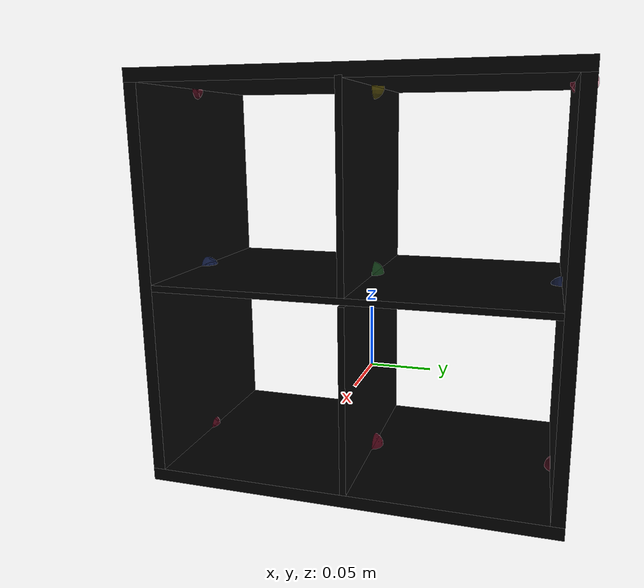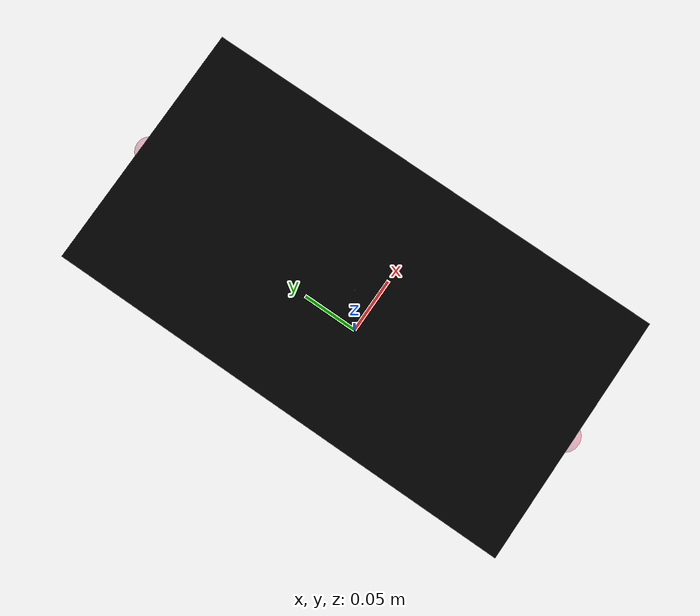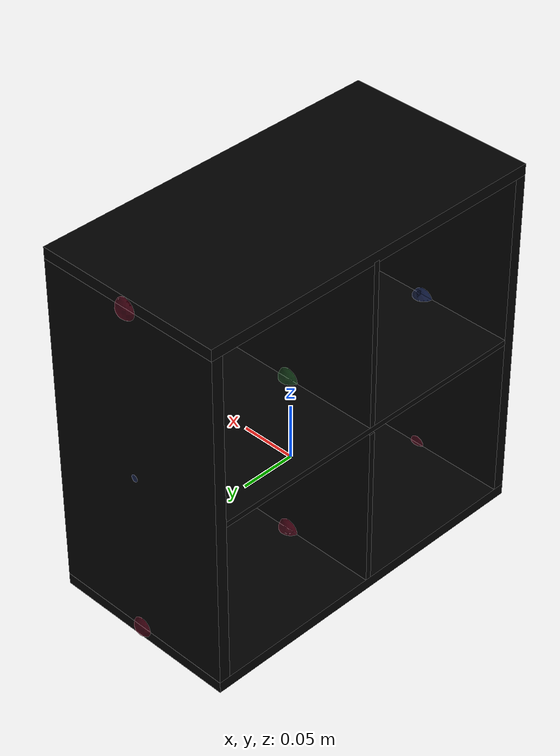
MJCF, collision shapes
<mujoco model="bookcase_expedit_0374">
    <custom>
        <numeric data="0.22421 -0.201384 0.002573 0.707107 -0.707107 0.000151 -0.000151" name="0_part0_initpos"/>
        <numeric data="0.214992 0.004814 0.00247 0.707046 0.707046 -0.00929 -0.00929" name="6_part6_initpos"/>
        <numeric data="-0.005844 -0.11863 0.00247 0.999429 -0.0 -0.0 0.033777" name="5_part5_initpos"/>
        <numeric data="0.220817 0.28772 0.00497 -0.000978 -0.000978 -0.707106 -0.707106" name="4_part4_initpos"/>
        <numeric data="-0.252329 0.285712 0.004955 0.707107 -0.707107 -7e-06 7e-06" name="3_part3_initpos"/>
        <numeric data="-0.254771 -0.120552 0.004956 -0.0 0.0 -1.0 0.0" name="2_part2_initpos"/>
        <numeric data="-0.001746 0.289743 0.00497 0.999611 0.0 -0.0 -0.027883" name="1_part1_initpos"/>
    </custom>
    <asset>
        <mesh file="bookcase_expedit_0374/0.stl" name="part0" scale="0.01 0.01 0.01"/>
        <mesh file="bookcase_expedit_0374/6.stl" name="part6" scale="0.01 0.01 0.01"/>
        <mesh file="bookcase_expedit_0374/5.stl" name="part5" scale="0.01 0.01 0.01"/>
        <mesh file="bookcase_expedit_0374/4.stl" name="part4" scale="0.01 0.01 0.01"/>
        <mesh file="bookcase_expedit_0374/3.stl" name="part3" scale="0.01 0.01 0.01"/>
        <mesh file="bookcase_expedit_0374/2.stl" name="part2" scale="0.01 0.01 0.01"/>
        <mesh file="bookcase_expedit_0374/1.stl" name="part1" scale="0.01 0.01 0.01"/>
    </asset>
    <equality>
        <weld active="false" body1="3_part3" body2="2_part2" solimp="1 1 0.5" solref="0.01 0.3"/>
        <weld active="false" body1="3_part3" body2="1_part1" solimp="1 1 0.5" solref="0.01 0.3"/>
        <weld active="false" body1="4_part4" body2="2_part2" solimp="1 1 0.5" solref="0.01 0.3"/>
        <weld active="false" body1="4_part4" body2="1_part1" solimp="1 1 0.5" solref="0.01 0.3"/>
        <weld active="false" body1="0_part0" body2="2_part2" solimp="1 1 0.5" solref="0.01 0.3"/>
        <weld active="false" body1="0_part0" body2="1_part1" solimp="1 1 0.5" solref="0.01 0.3"/>
        <weld active="false" body1="5_part5" body2="3_part3" solimp="1 1 0.5" solref="0.01 0.3"/>
        <weld active="false" body1="5_part5" body2="4_part4" solimp="1 1 0.5" solref="0.01 0.3"/>
        <weld active="false" body1="5_part5" body2="0_part0" solimp="1 1 0.5" solref="0.01 0.3"/>
        <weld active="false" body1="6_part6" body2="5_part5" solimp="1 1 0.5" solref="0.01 0.3"/>
        <weld active="false" body1="0_part0" body2="5_part5" solimp="1 1 0.5" solref="0.01 0.3"/>
        <weld active="false" body1="6_part6" body2="2_part2" solimp="1 1 0.5" solref="0.01 0.3"/>
        <weld active="false" body1="6_part6" body2="1_part1" solimp="1 1 0.5" solref="0.01 0.3"/>
        <weld active="false" body1="0_part0" body2="2_part2" solimp="1 1 0.5" solref="0.01 0.3"/>
        <weld active="false" body1="0_part0" body2="1_part1" solimp="1 1 0.5" solref="0.01 0.3"/>
    </equality>
    <worldbody>
        <body name="0_part0" pos="1e-09 -0.0 0.0" quat="1 0 0 0">
            <geom conaffinity="0" contype="0" density="0" mesh="part0" name="0_part0_mesh" pos="0.0 0.0 0.0"
                  rgba="0.82 0.71 0.55 1" type="mesh"/>
            <site name="0_part0_horizontal_radius_site" pos="1e-09 -0.0 0.0" quat="1 0 0 0" rgba="0 0 0 0" size="0.01"/>
            <site name="0_part0_top_site" pos="0.0 0.0 0.07375" quat="1 0 0 0" rgba="0 0 0 0" size="0.01"/>
            <site name="0_part0_bottom_site" pos="0.0 0.0 -0.07375" quat="1 0 0 0" rgba="0 0 0 0" size="0.01"/>
            <site name="0_part0_corner_site8" pos="-0.085 0.0025000020000000003 0.07375" quat="1 0 0 0" rgba="0 0 0 0"
                  size="0.01"/>
            <site name="0_part0_corner_site7" pos="0.08500000099999999 0.0025000020000000003 0.07375" quat="1 0 0 0"
                  rgba="0 0 0 0" size="0.01"/>
            <site name="0_part0_corner_site6" pos="0.08500000099999999 -0.0025000020000000003 0.07375" quat="1 0 0 0"
                  rgba="0 0 0 0" size="0.01"/>
            <site name="0_part0_corner_site5" pos="-0.085 -0.0025000020000000003 0.07375" quat="1 0 0 0" rgba="0 0 0 0"
                  size="0.01"/>
            <site name="0_part0_corner_site4" pos="-0.085 0.0025000020000000003 -0.07375" quat="1 0 0 0" rgba="0 0 0 0"
                  size="0.01"/>
            <site name="0_part0_corner_site3" pos="0.08500000099999999 0.0025000020000000003 -0.07375" quat="1 0 0 0"
                  rgba="0 0 0 0" size="0.01"/>
            <site name="0_part0_corner_site2" pos="0.08500000099999999 -0.0025000020000000003 -0.07375" quat="1 0 0 0"
                  rgba="0 0 0 0" size="0.01"/>
            <site name="0_part0_corner_site1" pos="-0.085 -0.0025000020000000003 -0.07375" quat="1 0 0 0" rgba="0 0 0 0"
                  size="0.01"/>
            <site name="sidepanel-mainpanel,0,180,conn_site1" pos="0.0 0.0 -0.07375" quat="0 0 1 0"
                  rgba="0.9019 0.0980 0.2941 0.3" size="0.01"/>
            <site name="centsupport-centpanel,0,180,conn_site1" pos="0.0 0.0 0.07375" quat="0 0 1 0"
                  rgba="0.2352 0.7058 0.2941 0.3" size="0.01"/>
            <geom density="50" name="noviz_collision_0_part0_0" pos="0.0 0.0 -0.0008287" quat="1 0 0 0" rgba="0 0 0 0"
                  size="0.085 0.0025 0.07292130000000001" solref="0.001 1" type="box"/>
        </body>
        <body name="6_part6" pos="1e-09 -0.0 0.1525" quat="1 0 0 0">
            <geom conaffinity="0" contype="0" density="0" mesh="part6" name="6_part6_mesh" pos="0.0 0.0 0.0"
                  rgba="0.82 0.71 0.55 1" type="mesh"/>
            <site name="6_part6_horizontal_radius_site" pos="1e-09 -0.0 -0.0" quat="1 0 0 0" rgba="0 0 0 0"
                  size="0.01"/>
            <site name="6_part6_top_site" pos="0.0 0.0 0.07375" quat="1 0 0 0" rgba="0 0 0 0" size="0.01"/>
            <site name="6_part6_bottom_site" pos="0.0 0.0 -0.07375" quat="1 0 0 0" rgba="0 0 0 0" size="0.01"/>
            <site name="6_part6_corner_site8" pos="-0.085 0.0025000020000000003 0.07375" quat="1 0 0 0" rgba="0 0 0 0"
                  size="0.01"/>
            <site name="6_part6_corner_site7" pos="0.08500000099999999 0.0025000020000000003 0.07375" quat="1 0 0 0"
                  rgba="0 0 0 0" size="0.01"/>
            <site name="6_part6_corner_site6" pos="0.08500000099999999 -0.0025000020000000003 0.07375" quat="1 0 0 0"
                  rgba="0 0 0 0" size="0.01"/>
            <site name="6_part6_corner_site5" pos="-0.085 -0.0025000020000000003 0.07375" quat="1 0 0 0" rgba="0 0 0 0"
                  size="0.01"/>
            <site name="6_part6_corner_site4" pos="-0.085 0.0025000020000000003 -0.07375" quat="1 0 0 0" rgba="0 0 0 0"
                  size="0.01"/>
            <site name="6_part6_corner_site3" pos="0.08500000099999999 0.0025000020000000003 -0.07375" quat="1 0 0 0"
                  rgba="0 0 0 0" size="0.01"/>
            <site name="6_part6_corner_site2" pos="0.08500000099999999 -0.0025000020000000003 -0.07375" quat="1 0 0 0"
                  rgba="0 0 0 0" size="0.01"/>
            <site name="6_part6_corner_site1" pos="-0.085 -0.0025000020000000003 -0.07375" quat="1 0 0 0" rgba="0 0 0 0"
                  size="0.01"/>
            <site name="centsupport-mainpanel,0,180,conn_site1" pos="0.0 0.0 0.07375" quat="1 0 0 0"
                  rgba="1.0 0.8823 0.0980 0.3" size="0.01"/>
            <site name="centsupport-centpanel,0,180,conn_site2" pos="0.0 0.0 -0.07375" quat="1 0 0 0"
                  rgba="0.2352 0.7058 0.2941 0.3" size="0.01"/>
            <geom density="50" name="noviz_collision_6_part6_0" pos="0.0 0.0 0.0008287" quat="1 0 0 0" rgba="0 0 0 0"
                  size="0.085 0.0025 0.0745787" solref="0.001 1" type="box"/>
        </body>
        <body name="5_part5" pos="1e-09 0.0 0.076249999" quat="1 0 0 0">
            <geom conaffinity="0" contype="0" density="0" mesh="part5" name="5_part5_mesh" pos="0.0 0.0 0.0"
                  rgba="0.82 0.71 0.55 1" type="mesh"/>
            <site name="5_part5_horizontal_radius_site" pos="1e-09 -0.0 -0.0" quat="1 0 0 0" rgba="0 0 0 0"
                  size="0.01"/>
            <site name="5_part5_top_site" pos="0.0 -0.0 0.002500001" quat="1 0 0 0" rgba="0 0 0 0" size="0.01"/>
            <site name="5_part5_bottom_site" pos="0.0 -0.0 -0.002500001" quat="1 0 0 0" rgba="0 0 0 0" size="0.01"/>
            <site name="5_part5_corner_site8" pos="-0.085 0.15 0.002500001" quat="1 0 0 0" rgba="0 0 0 0" size="0.01"/>
            <site name="5_part5_corner_site7" pos="0.08500000099999999 0.15 0.002500001" quat="1 0 0 0" rgba="0 0 0 0"
                  size="0.01"/>
            <site name="5_part5_corner_site6" pos="0.08500000099999999 -0.150000001 0.002500001" quat="1 0 0 0"
                  rgba="0 0 0 0" size="0.01"/>
            <site name="5_part5_corner_site5" pos="-0.085 -0.150000001 0.002500001" quat="1 0 0 0" rgba="0 0 0 0"
                  size="0.01"/>
            <site name="5_part5_corner_site4" pos="-0.085 0.15 -0.002500001" quat="1 0 0 0" rgba="0 0 0 0" size="0.01"/>
            <site name="5_part5_corner_site3" pos="0.08500000099999999 0.15 -0.002500001" quat="1 0 0 0" rgba="0 0 0 0"
                  size="0.01"/>
            <site name="5_part5_corner_site2" pos="0.08500000099999999 -0.150000001 -0.002500001" quat="1 0 0 0"
                  rgba="0 0 0 0" size="0.01"/>
            <site name="5_part5_corner_site1" pos="-0.085 -0.150000001 -0.002500001" quat="1 0 0 0" rgba="0 0 0 0"
                  size="0.01"/>
            <site name="centpanel-sidepanel,0,180,conn_site2" pos="0.0 -0.1499 -0.00105" quat="0.7071067 0.7071068 0 0"
                  rgba="0.2627 0.3882 0.8470 0.3" size="0.01"/>
            <site name="centpanel-sidepanel,0,180,conn_site1" pos="0.0 0.15050000000000002 -0.00185"
                  quat="0.7071067 -0.7071068 0 0" rgba="0.2627 0.3882 0.8470 0.3" size="0.01"/>
            <site name="centpanel-centsupport,0,180,conn_site2" pos="0.0 0.0 0.0025" quat="1 0 0 0"
                  rgba="0.2352 0.7058 0.2941 0.3" size="0.01"/>
            <site name="centpanel-centsupport,0,180,conn_site1" pos="0.0 0.0 -0.0025" quat="0 0 1 0"
                  rgba="0.2352 0.7058 0.2941 0.3" size="0.01"/>
            <geom density="50" name="noviz_collision_5_part5_0" pos="0.0 0.0 0.0" quat="1 0 0 0" rgba="0 0 0 0"
                  size="0.085 0.15 0.0025" solref="0.001 1" type="box"/>
        </body>
        <body name="4_part4" pos="1e-09 -0.155000002 0.07625" quat="1 0 0 0">
            <geom conaffinity="0" contype="0" density="0" mesh="part4" name="4_part4_mesh" pos="0.0 0.0 0.0"
                  rgba="0.82 0.71 0.55 1" type="mesh"/>
            <site name="4_part4_horizontal_radius_site" pos="1e-09 -0.0 0.0" quat="1 0 0 0" rgba="0 0 0 0" size="0.01"/>
            <site name="4_part4_top_site" pos="0.0 -0.0 0.15" quat="1 0 0 0" rgba="0 0 0 0" size="0.01"/>
            <site name="4_part4_bottom_site" pos="0.0 -0.0 -0.15" quat="1 0 0 0" rgba="0 0 0 0" size="0.01"/>
            <site name="4_part4_corner_site8" pos="-0.085 0.005 0.15" quat="1 0 0 0" rgba="0 0 0 0" size="0.01"/>
            <site name="4_part4_corner_site7" pos="0.08500000099999999 0.005 0.15" quat="1 0 0 0" rgba="0 0 0 0"
                  size="0.01"/>
            <site name="4_part4_corner_site6" pos="0.08500000099999999 -0.005000001 0.15" quat="1 0 0 0" rgba="0 0 0 0"
                  size="0.01"/>
            <site name="4_part4_corner_site5" pos="-0.085 -0.005000001 0.15" quat="1 0 0 0" rgba="0 0 0 0" size="0.01"/>
            <site name="4_part4_corner_site4" pos="-0.085 0.005 -0.15" quat="1 0 0 0" rgba="0 0 0 0" size="0.01"/>
            <site name="4_part4_corner_site3" pos="0.08500000099999999 0.005 -0.15" quat="1 0 0 0" rgba="0 0 0 0"
                  size="0.01"/>
            <site name="4_part4_corner_site2" pos="0.08500000099999999 -0.005000001 -0.15" quat="1 0 0 0" rgba="0 0 0 0"
                  size="0.01"/>
            <site name="4_part4_corner_site1" pos="-0.085 -0.005000001 -0.15" quat="1 0 0 0" rgba="0 0 0 0"
                  size="0.01"/>
            <site name="sidepanel-mainpanel,0,180,conn_site5" pos="0.0 -0.0011 0.15" quat="1 0 0 0"
                  rgba="0.9019 0.0980 0.2941 0.3" size="0.01"/>
            <site name="sidepanel-mainpanel,0,180,conn_site3" pos="0.0 -0.0021 -0.15" quat="0 0 1 0"
                  rgba="0.9019 0.0980 0.2941 0.3" size="0.01"/>
            <site name="sidepanel-centpanel,0,180,conn_site2" pos="0.0 0.0051 -0.00105" quat="0.7071067 0.7071068 0 0"
                  rgba="0.2627 0.3882 0.8470 0.3" size="0.01"/>
            <geom density="50" name="noviz_collision_4_part4_0" pos="0.0 7.5e-06 0.0" quat="1 0 0 0" rgba="0 0 0 0"
                  size="0.085 0.005007500000000001 0.15" solref="0.001 1" type="box"/>
        </body>
        <body name="3_part3" pos="1e-09 0.155 0.07625" quat="1 0 0 0">
            <geom conaffinity="0" contype="0" density="0" mesh="part3" name="3_part3_mesh" pos="0.0 0.0 0.0"
                  rgba="0.82 0.71 0.55 1" type="mesh"/>
            <site name="3_part3_horizontal_radius_site" pos="1e-09 -0.0 0.0" quat="1 0 0 0" rgba="0 0 0 0" size="0.01"/>
            <site name="3_part3_top_site" pos="0.0 0.0 0.15" quat="1 0 0 0" rgba="0 0 0 0" size="0.01"/>
            <site name="3_part3_bottom_site" pos="0.0 0.0 -0.15" quat="1 0 0 0" rgba="0 0 0 0" size="0.01"/>
            <site name="3_part3_corner_site8" pos="-0.085 0.005000002 0.15" quat="1 0 0 0" rgba="0 0 0 0" size="0.01"/>
            <site name="3_part3_corner_site7" pos="0.08500000099999999 0.005000002 0.15" quat="1 0 0 0" rgba="0 0 0 0"
                  size="0.01"/>
            <site name="3_part3_corner_site6" pos="0.08500000099999999 -0.005000002 0.15" quat="1 0 0 0" rgba="0 0 0 0"
                  size="0.01"/>
            <site name="3_part3_corner_site5" pos="-0.085 -0.005000002 0.15" quat="1 0 0 0" rgba="0 0 0 0" size="0.01"/>
            <site name="3_part3_corner_site4" pos="-0.085 0.005000002 -0.15" quat="1 0 0 0" rgba="0 0 0 0" size="0.01"/>
            <site name="3_part3_corner_site3" pos="0.08500000099999999 0.005000002 -0.15" quat="1 0 0 0" rgba="0 0 0 0"
                  size="0.01"/>
            <site name="3_part3_corner_site2" pos="0.08500000099999999 -0.005000002 -0.15" quat="1 0 0 0" rgba="0 0 0 0"
                  size="0.01"/>
            <site name="3_part3_corner_site1" pos="-0.085 -0.005000002 -0.15" quat="1 0 0 0" rgba="0 0 0 0"
                  size="0.01"/>
            <site name="sidepanel-mainpanel,0,180,conn_site4" pos="0.0 0.0016 0.15" quat="1 0 0 0"
                  rgba="0.9019 0.0980 0.2941 0.3" size="0.01"/>
            <site name="sidepanel-mainpanel,0,180,conn_site2" pos="0.0 0.0004 -0.15" quat="0 0 1 0"
                  rgba="0.9019 0.0980 0.2941 0.3" size="0.01"/>
            <site name="sidepanel-centpanel,0,180,conn_site1" pos="0.0 -0.0045000000000000005 -0.00185"
                  quat="0.7071067 -0.7071068 0 0" rgba="0.2627 0.3882 0.8470 0.3" size="0.01"/>
            <geom density="50" name="noviz_collision_3_part3_0" pos="0.0 -7.5e-06 0.0" quat="1 0 0 0" rgba="0 0 0 0"
                  size="0.085 0.0049925 0.15" solref="0.001 1" type="box"/>
        </body>
        <body name="2_part2" pos="1e-09 -1e-09 0.23125" quat="1 0 0 0">
            <geom conaffinity="0" contype="0" density="0" mesh="part2" name="2_part2_mesh" pos="0.0 0.0 0.0"
                  rgba="0.82 0.71 0.55 1" type="mesh"/>
            <site name="2_part2_horizontal_radius_site" pos="1e-09 -1e-09 0.0" quat="1 0 0 0" rgba="0 0 0 0"
                  size="0.01"/>
            <site name="2_part2_top_site" pos="0.0 -1e-09 0.005" quat="1 0 0 0" rgba="0 0 0 0" size="0.01"/>
            <site name="2_part2_bottom_site" pos="0.0 -1e-09 -0.005" quat="1 0 0 0" rgba="0 0 0 0" size="0.01"/>
            <site name="2_part2_corner_site8" pos="-0.085 0.16 0.005" quat="1 0 0 0" rgba="0 0 0 0" size="0.01"/>
            <site name="2_part2_corner_site7" pos="0.08500000099999999 0.16 0.005" quat="1 0 0 0" rgba="0 0 0 0"
                  size="0.01"/>
            <site name="2_part2_corner_site6" pos="0.08500000099999999 -0.160000001 0.005" quat="1 0 0 0" rgba="0 0 0 0"
                  size="0.01"/>
            <site name="2_part2_corner_site5" pos="-0.085 -0.160000001 0.005" quat="1 0 0 0" rgba="0 0 0 0"
                  size="0.01"/>
            <site name="2_part2_corner_site4" pos="-0.085 0.16 -0.005" quat="1 0 0 0" rgba="0 0 0 0" size="0.01"/>
            <site name="2_part2_corner_site3" pos="0.08500000099999999 0.16 -0.005" quat="1 0 0 0" rgba="0 0 0 0"
                  size="0.01"/>
            <site name="2_part2_corner_site2" pos="0.08500000099999999 -0.160000001 -0.005" quat="1 0 0 0"
                  rgba="0 0 0 0" size="0.01"/>
            <site name="2_part2_corner_site1" pos="-0.085 -0.160000001 -0.005" quat="1 0 0 0" rgba="0 0 0 0"
                  size="0.01"/>
            <site name="mainpanel-sidepanel,0,180,conn_site5" pos="0.0 -0.1561 -0.005" quat="1 0 0 0"
                  rgba="0.9019 0.0980 0.2941 0.3" size="0.01"/>
            <site name="mainpanel-sidepanel,0,180,conn_site4" pos="0.0 0.15660000000000002 -0.005" quat="1 0 0 0"
                  rgba="0.9019 0.0980 0.2941 0.3" size="0.01"/>
            <site name="mainpanel-centsupport,0,180,conn_site1" pos="0.0 0.0 -0.005" quat="1 0 0 0"
                  rgba="1.0 0.8823 0.0980 0.3" size="0.01"/>
            <geom density="50" name="noviz_collision_2_part2_0" pos="0.0 0.0 -6.9e-06" quat="1 0 0 0" rgba="0 0 0 0"
                  size="0.085 0.16 0.0049930999999999994" solref="0.001 1" type="box"/>
        </body>
        <body name="1_part1" pos="1e-09 -1e-09 -0.07875" quat="1 0 0 0">
            <geom conaffinity="0" contype="0" density="0" mesh="part1" name="1_part1_mesh" pos="0.0 0.0 0.0"
                  rgba="0.82 0.71 0.55 1" type="mesh"/>
            <site name="1_part1_horizontal_radius_site" pos="1e-09 -1e-09 0.0" quat="1 0 0 0" rgba="0 0 0 0"
                  size="0.01"/>
            <site name="1_part1_top_site" pos="0.0 -1e-09 0.005" quat="1 0 0 0" rgba="0 0 0 0" size="0.01"/>
            <site name="1_part1_bottom_site" pos="0.0 -1e-09 -0.005" quat="1 0 0 0" rgba="0 0 0 0" size="0.01"/>
            <site name="1_part1_corner_site8" pos="-0.085 0.16 0.005" quat="1 0 0 0" rgba="0 0 0 0" size="0.01"/>
            <site name="1_part1_corner_site7" pos="0.08500000099999999 0.16 0.005" quat="1 0 0 0" rgba="0 0 0 0"
                  size="0.01"/>
            <site name="1_part1_corner_site6" pos="0.08500000099999999 -0.160000001 0.005" quat="1 0 0 0" rgba="0 0 0 0"
                  size="0.01"/>
            <site name="1_part1_corner_site5" pos="-0.085 -0.160000001 0.005" quat="1 0 0 0" rgba="0 0 0 0"
                  size="0.01"/>
            <site name="1_part1_corner_site4" pos="-0.085 0.16 -0.005" quat="1 0 0 0" rgba="0 0 0 0" size="0.01"/>
            <site name="1_part1_corner_site3" pos="0.08500000099999999 0.16 -0.005" quat="1 0 0 0" rgba="0 0 0 0"
                  size="0.01"/>
            <site name="1_part1_corner_site2" pos="0.08500000099999999 -0.160000001 -0.005" quat="1 0 0 0"
                  rgba="0 0 0 0" size="0.01"/>
            <site name="1_part1_corner_site1" pos="-0.085 -0.160000001 -0.005" quat="1 0 0 0" rgba="0 0 0 0"
                  size="0.01"/>
            <site name="mainpanel-sidepanel,0,180,conn_site3" pos="0.0 -0.15710000000000002 0.005" quat="0 0 1 0"
                  rgba="0.9019 0.0980 0.2941 0.3" size="0.01"/>
            <site name="mainpanel-sidepanel,0,180,conn_site2" pos="0.0 0.15539999999999998 0.005" quat="0 0 1 0"
                  rgba="0.9019 0.0980 0.2941 0.3" size="0.01"/>
            <site name="mainpanel-sidepanel,0,180,conn_site1" pos="0.0 0.0 0.005" quat="0 0 1 0"
                  rgba="0.9019 0.0980 0.2941 0.3" size="0.01"/>
            <geom density="50" name="noviz_collision_1_part1_0" pos="0.0 0.0 6.9e-06" quat="1 0 0 0" rgba="0 0 0 0"
                  size="0.085 0.16 0.0050069" solref="0.001 1" type="box"/>
        </body>
    </worldbody>
    <actuator/>
    <sensor/>
    <contact/>
    <default/>
</mujoco>
